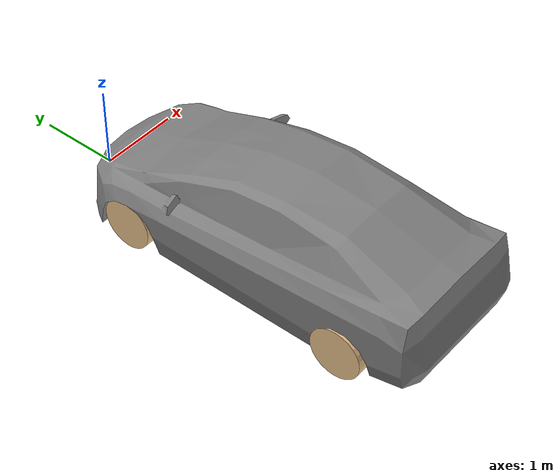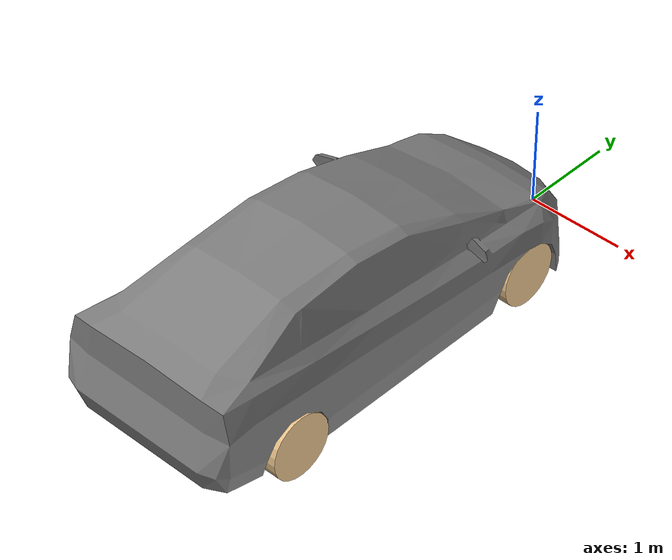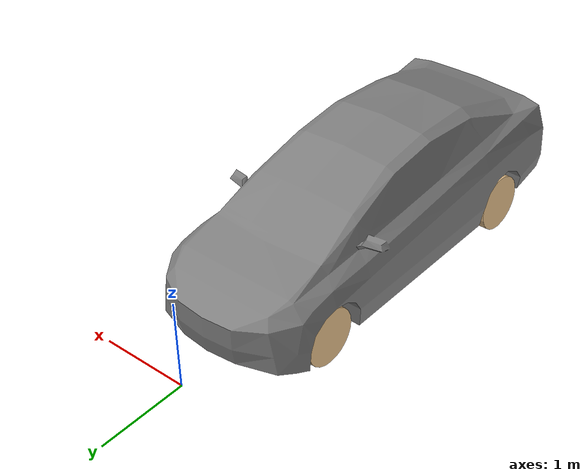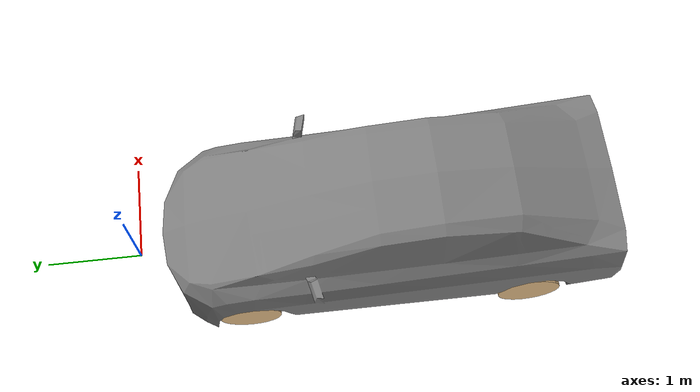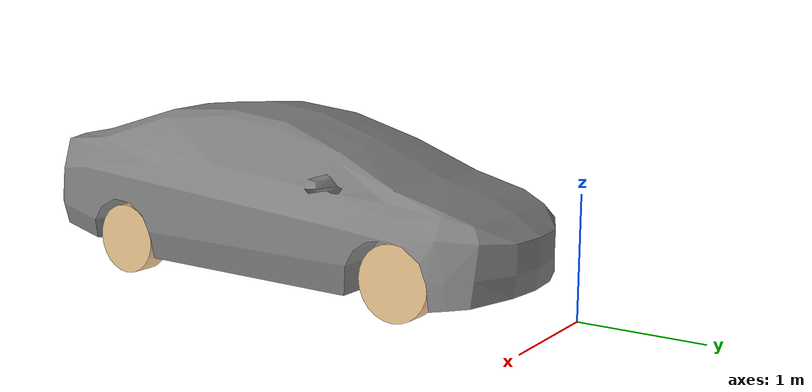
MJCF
<mujoco model="prius">
  <compiler angle="radian" coordinate="local" meshdir="meshes/" texturedir="textures/" balanceinertia="true" />
  <statistic meansize="0.178661" extent="5.7907" center="1.31948 3.98163e-05 0.647599"/>
  <default>
    <default class="wheel">
      <geom type="cylinder" size="0.31265 .11" rgba="0.9 .75 .54 1"/>
    </default>
  </default>

  <asset>
    <mesh name="chassis" file="hybrid_body.stl" scale="0.01 0.01 0.01"/>
    <mesh name="wheel" file="wheel.stl" scale="0.01 0.01 0.01"/>
    <mesh name="steering_wheel" file="steering_wheel.stl" scale="0.01 0.01 0.01"/>
    <texture file="Hybrid.png" name="chassis"/>
    <texture file="Hybrid_Interior.png" name="texture_hybrid_interior"/>
    <texture file="Wheels3.png" name="texture_wheel"/>
    <material name="chassis" texture="chassis" specular="1" shininess="1"/>
    <material name="wheel"  texture="texture_wheel" specular="1" shininess="1"/>
  </asset>
  <worldbody>
    <light name="spotlight2" mode="trackcom" pos="0 10 2" dir="0 -1 0"/>
    <camera name="track_car_side" mode="trackcom" pos='-5 -2 1' xyaxes="0 -10 0.05 0 1 0"/>
    <camera name="track_car_top" mode="trackcom" pos='0 -3 10' xyaxes="0 -10 0.05 1 0 0"/>
    <body name="car" pos='0 -2.6 0.0132993' quat='1 0 0 1'>
      <camera name="track_car_back" mode="trackcom" pos='0 -7 2' euler="1.57 0 0"/> <!-- pos='0 -7 1'  -->
      <camera name="track_driver" mode="trackcom" pos='0. 1. 1.5' euler="1.57 -1.57 0"/> <!-- pos='-0.28 0 1''  -->

      <joint name="car_tz" type="slide" pos="0 0 0" axis="       0        0        1" limited="true" range="      -300        300" ref="0" armature="0" damping="0" stiffness="0"></joint>
      <joint name="car_ty" type="slide" pos="0 0 0" axis="       0        1        0" limited="true" range="      -100        200" ref="0" armature="0" damping="0" stiffness="0"></joint>
      <joint name="car_tx" type="slide" pos="0 0 0" axis="       1        0        0" limited="true" range="      -500        500" ref="0" armature="0" damping="0" stiffness="0"></joint>
      <joint name="car_tilt" type="hinge" pos="0 0 0" axis="       0        0        1" limited="true" range=" -1.5708   1.5708" ref="0" armature="0" damping="0" stiffness="0"></joint>
      <joint name="car_list" type="hinge" pos="0 0 0" axis="       1        0        0" limited="true" range=" -1.5708   1.5708" ref="0" armature="0" damping="0" stiffness="0"></joint>
      <joint name="car_rotation" type="hinge" pos="0 0 0" axis="       0        1        0" limited="true" range=" -1.5708   1.5708" ref="0" armature="0" damping="0" stiffness="0"></joint>

      <geom name="chassis_visual" size="0.8763 1.05 0.475" pos="0 3.98163e-05 0.0" quat="0.707388 -0.7 -0.7 0.706825" solref="0.001 0.9999" solimp="999.9999 0.0000001 0.0000001" type="mesh" mesh="chassis"/>
      <body name="rear_left_wheel" pos="-1.399368053 0.794154 0.3"  zaxis="0 1 0">
        <inertial pos="0 0 0" mass="11" diaginertia="0.586312 0.335529 0.335529"/>
        <joint name="rear_left_wheel_joint" range="-0.8727 0.8727" limited="false"/>
        <geom name="rear_left_wheel" class="wheel"/>
      </body>
      <body name="rear_right_wheel" pos="-1.400631027 -0.791845 0.3" zaxis="0 1 0">
        <inertial pos="0 0 0" mass="11" diaginertia="0.586312 0.335529 0.335529"/>
        <joint name="rear_right_wheel_joint" range="-0.8727 0.8727" limited="false"/>
        <geom name="rear_right_wheel" class="wheel"/>
      </body>

      <body name="steering_body" pos="0 0 0">
        <body name="steering_wheel" pos="0.67815 0.357234 0.988243" quat="0.56269 -0.428693 -0.428352 0.562242">
          <inertial pos="0 0 0" mass="1" diaginertia="0.145833 0.145833 0.125"/>
          <joint name="steering_joint" pos="0 0 0" axis="0 0 1" range="-7.85 7.85"/>
          <geom name="steering_wheel" type="mesh" contype="0" conaffinity="0" group="1" mesh="steering_wheel"/>
        </body>
        <body name="front_left_steer_joint" pos="1.46061 0.765877 0.3" zaxis="0 1 0">
          <inertial pos="0 0 0" mass="1" diaginertia="0.004 0.004 0.004"/>
          <joint name="front_left_steer_joint" pos="0 0 0" axis="0 1 0" range="-0.8727 0.8727" damping="0.01" frictionloss="0.01" limited="true" solreflimit="0.09 0.10" solimplimit="0.90 1.00 0.000001"/>
          <body name="front_left_wheel">
            <inertial pos="0 0 0" mass="11" diaginertia="0.586312 0.335529 0.335529"/>
            <joint name="front_left_wheel_joint" pos="0 0 0" axis="0 0 1" range="-0.8727 0.8727" type="hinge"  limited="false"/>
            <geom name="front_left_wheel" class="wheel"/>
          </body>
        </body>
        <body name="front_right_steer_joint" pos="1.45939 -0.768123 0.3" zaxis="0 1 0">
          <inertial pos="0 0 0" mass="1" diaginertia="0.004 0.004 0.004"/>
          <joint name="front_right_steer_joint" pos="0 0 0" axis="0 1 0" range="-0.8727 0.8727" damping="0.01" frictionloss="0.01" limited="true" solreflimit="0.09 0.10" solimplimit="0.90 1.00 0.000001"/>
          <body name="front_right_wheel">
            <inertial pos="0 0 0" mass="11" diaginertia="0.586312 0.335529 0.335529"/>
            <joint name="front_right_wheel_joint" pos="0 0 0" axis="0 0 1" range="-0.8727 0.8727" type="hinge" limited="false"/>
            <geom name="front_right_wheel" class="wheel"/>
          </body>
        </body>
      </body>
    </body>
  </worldbody>

  <!--Synchronize the steering values of right and left wheels-->
	<equality>
		<joint joint1="front_left_steer_joint" joint2="front_right_steer_joint" polycoef="0 1 0 0 0"></joint>
	</equality>

  <tendon>
    <fixed name="front_wheel">
      <joint joint="front_left_wheel_joint" coef=".5"/>
      <joint joint="front_right_wheel_joint" coef=".5"/>
    </fixed>
    <fixed name="back_wheel" limited="false">
      <joint joint="rear_left_wheel_joint" coef=".5"/>
      <joint joint="rear_right_wheel_joint" coef=".5"/>
    </fixed>
    <fixed name="turn">
      <joint joint="front_left_steer_joint" coef="1.0"/>
      <joint joint="front_right_steer_joint" coef="1.0"/>
      <joint joint="steering_joint" coef="1.0"/>
    </fixed>
  </tendon>

  <actuator>
    <motor name="front_wheel" tendon="front_wheel" ctrlrange="-20 20" gear="100"/>
    <motor name="back_wheel" tendon="back_wheel" ctrlrange="-20 20" gear="100"/>
    <motor name="turn" tendon="turn" ctrlrange="-0.95 0.95" gear="700"/>
  </actuator>
  <contact>
    <exclude name="exclude_car_fl1" body1="car" body2="front_left_wheel"/>
    <exclude name="exclude_car_fr1" body1="car" body2="front_right_wheel"/>
    <exclude name="exclude_car_rl1" body1="car" body2="rear_left_wheel"/>
    <exclude name="exclude_car_rr1" body1="car" body2="rear_right_wheel"/>
  </contact>
</mujoco>
